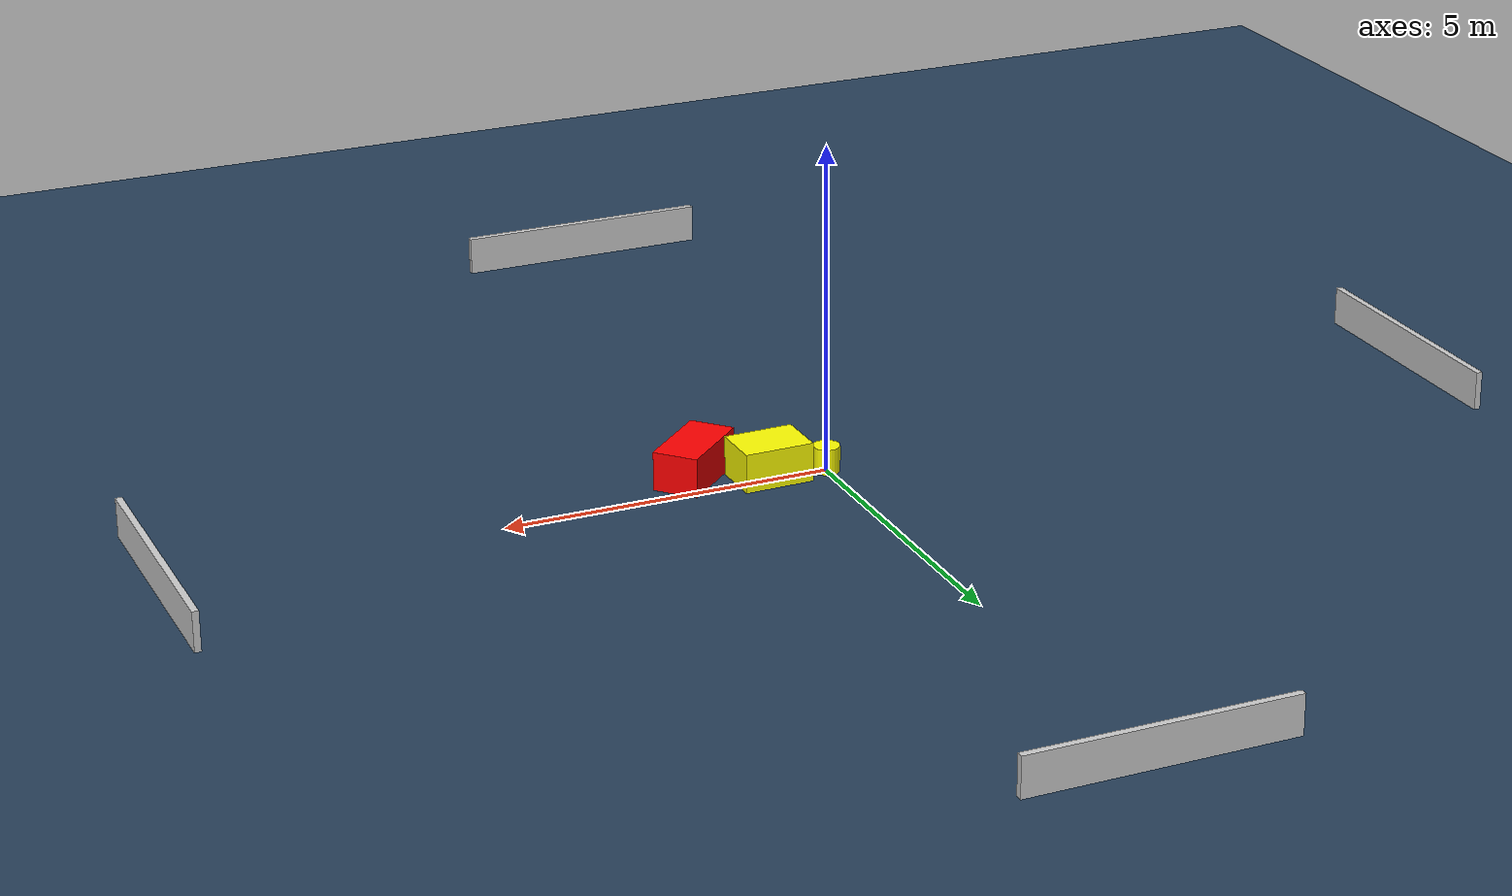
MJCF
<?xml version="1.0" ?>
<mujoco model="generated_environment">
  <option timestep="0.01" integrator="RK4" cone="elliptic"/>
  <default>
    <geom density="1"/>
  </default>
  <asset>
    <texture builtin="gradient" height="3072" name="skybox" rgb1="0.3 0.5 0.7" rgb2="0 0 0" type="skybox" width="512"/>
    <texture builtin="checker" height="300" name="groundplane" rgb1="0.2 0.3 0.4" rgb2="0.1 0.2 0.3" type="2d" width="300"/>
    <material name="groundplane" reflectance="0.2" texrepeat="5 5" texture="groundplane"/>
  </asset>
  <worldbody>
    <light dir="0 0 -1" directional="true" pos="0 0 1.5"/>
    <geom condim="3" friction="0.5 0.005 0.001" material="groundplane" name="floor" pos="0 0 0" size="0 0 0.05" type="plane"/>
    <body name="walls">
      <geom name="wall_1" condim="4" pos="-10.0 0.0 0.3" rgba="0.800000011920929 0.800000011920929 0.800000011920929 1.0" size="0.05 2.0 0.3" type="box"/>
      <geom name="wall_2" condim="4" pos="10.0 0.0 0.3" rgba="0.800000011920929 0.800000011920929 0.800000011920929 1.0" size="0.05 2.0 0.3" type="box"/>
      <geom name="wall_3" condim="4" pos="0.0 -10.0 0.3" rgba="0.800000011920929 0.800000011920929 0.800000011920929 1.0" size="2.0 0.05 0.3" type="box"/>
      <geom name="wall_4" condim="4" pos="0.0 10.0 0.3" rgba="0.800000011920929 0.800000011920929 0.800000011920929 1.0" size="2.0 0.05 0.3" type="box"/>
    </body>
    <body name="robot">
      <joint name="joint_x" type="slide" pos="0 0 0" axis="1 0 0"/>
      <joint name="joint_y" type="slide" pos="0 0 0" axis="0 1 0"/>
      <geom name="robot" type="cylinder" pos="0.0 0.0 0.2" size="0.2 0.2 0.0" mass="5.0" friction="1.0 0.005 0.0001" condim="4" rgba="1.0 1.0 0.0 1.0"/>
    </body>
    <body name="obstacle_1_movable">
      <geom name="obstacle_1_movable" condim="4" pos="0.8761917800108562 -0.1072494174768908 0.3" euler="0 0 0.9143741641433012" friction="0.0 0.005 0.001" rgba="1.0 1.0 0.0 1.0" size="0.5330667414769392 0.3859411690315592 0.3" type="box" mass="0.1"/>
      <joint type="free"/>
    </body>
    <body name="obstacle_2_static">
      <geom name="obstacle_2_static" condim="4" pos="1.8691274356927994 -0.5587250689949878 0.3" euler="0 0 132.4776378878024" friction="0.0 0.005 0.001" rgba="1.0 0.0 0.0 1.0" size="0.3504047388060637 0.6483601071281567 0.3" type="box"/>
    </body>
  </worldbody>
  <actuator>
    <motor name="actuator_x" joint="joint_x" gear="1" ctrlrange="-1 1"/>
    <motor name="actuator_y" joint="joint_y" gear="1" ctrlrange="-1 1"/>
  </actuator>
</mujoco>
